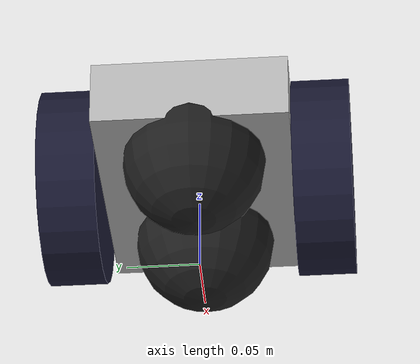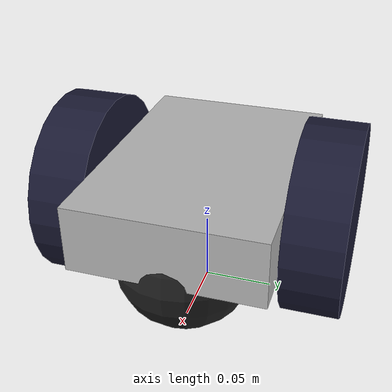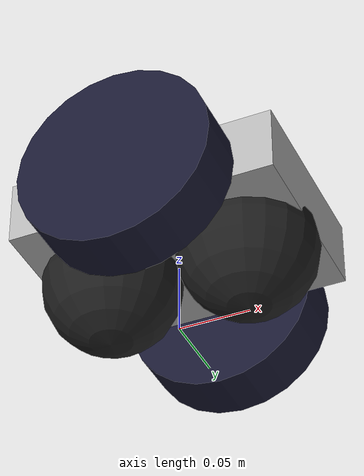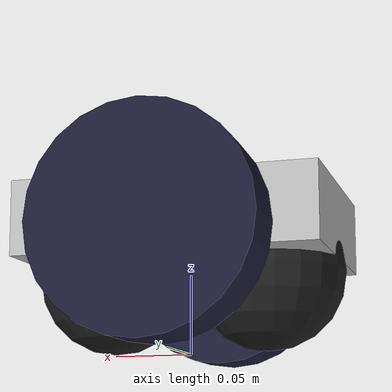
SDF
<?xml version="1.0"?>
<sdf version="1.5">
  <model name = "myrobot_modelled">
    <static>false</static>

    <!-- LINKS -->

    <!--%%%%%%%%%%%%%%%%%%%%%%%%%%%%%%%%%%%%%%%%%BODY%%%%%%%%%%%%%%%%%%%%%%%%%%%%%%%%%%%%%%%%%%%%%%-->
    <link name="cube_base">
      <inertial>
        <mass>15</mass>
        <origin xyz="0.0 0 0" rpy=" 0 0 0"/>
        <inertia>
          <ixx>1</ixx> <ixy>0</ixy> <ixz>0</ixz>
          <iyy>1</iyy> <iyz>0</iyz>
          <izz>1</izz>
        </inertia>
      </inertial>
      <pose>0 0 0.08 0 0 0</pose>
      <collision name="collision">
        <geometry>
          <box>
            <size>0.19 0.134 0.047</size>
          </box>
        </geometry>
        <surface>
          <friction>
            <ode>
              <mu>0</mu>
              <mu2>0</mu2>
            </ode>
          </friction>
        </surface>
      </collision>
      <visual name="visual">
        <pose>0 0 0 0 0 0</pose>
        <geometry>
          <box>
            <size>0.19 0.134 0.047</size>
          </box>
        </geometry>

      </visual>

      <collision name = 'caster_collision'>
        <pose>-0.05 0 -0.03 0 0 0</pose>
        <geometry>
          <sphere>
            <radius>0.049</radius>
          </sphere>
        </geometry>
        <surface>
          <friction>
            <ode>
              <mu>0</mu>
              <mu2>0</mu2>
              <slip1>0.1</slip1>
              <slip2>0.1</slip2>
            </ode>
          </friction>
        </surface>
      </collision>
      <visual name='caster_collision'>
        <pose>-0.05 0 -0.03 0 0 0</pose>
        <geometry>
          <sphere>
            <radius>0.049</radius>
          </sphere>
        </geometry>
        <material>
          <script>
            <uri>file://media/materials/scripts/gazebo.material</uri>
            <name>Gazebo/Black</name>
          </script>
        </material>
      </visual>

      <collision name = 'caster_collision2'>
        <pose>0.05 0 -0.03 0 0 0</pose>
        <geometry>
          <sphere>
            <radius>0.049</radius>
          </sphere>
        </geometry>

        <surface>
          <friction>
            <ode>
              <mu>0</mu>
              <mu2>0</mu2>
              <slip1>0.1</slip1>
              <slip2>0.1</slip2>
            </ode>
          </friction>
        </surface>
      </collision>
      <visual name='caster_collision2'>
        <pose>0.05 0 -0.03 0 0 0</pose>
        <geometry>
          <sphere>
            <radius>0.049</radius>
          </sphere>
        </geometry>
        <material>
          <script>
            <uri>file://media/materials/scripts/gazebo.material</uri>
            <name>Gazebo/Black</name>
          </script>
        </material>
      </visual>
    </link>

    <link name='left_wheel'>
      <pose>0. 0.087 0.06825 0 1.5707 1.5707 </pose>
      <inertial>
        <mass>0.1</mass>
        <inertia>
          <ixx>0.00006771</ixx>
          <ixy>0</ixy>
          <ixz>0</ixz>
          <iyy>0.00006771</iyy>
          <iyz>0</iyz>
          <izz>0.000125</izz>
        </inertia>
      </inertial>
        <collision name='  collision'>
          <geometry>
            <cylinder>
              <radius>.06825</radius>
              <length>0.035</length>
            </cylinder>
          </geometry>
        </collision>

        <visual name='visual'>
          <geometry>
            <cylinder>
              <radius>.06825</radius>
              <length>0.04</length>
            </cylinder>
          </geometry>

          <material>
            <ambient>0.1 0.1 0.1 1</ambient>
            <diffuse>0.1 0.1 0.2 1</diffuse>
            <specular>0 0 0 0</specular>
            <emissive>0 0 0 1</emissive>
          </material>
        </visual>
    </link>

    <link name='right_wheel'>
      <pose>0. -0.087 0.06825 0 1.5707 1.5707 </pose>
      <inertial>
        <mass>0.1</mass>
        <inertia>
          <ixx>0.00006771</ixx>
          <ixy>0</ixy>
          <ixz>0</ixz>
          <iyy>0.00006771</iyy>
          <iyz>0</iyz>
          <izz>0.000125</izz>
        </inertia>
      </inertial>
        <collision name='  collision'>
          <geometry>
            <cylinder>
              <radius>.06825</radius>
              <length>0.04</length>
            </cylinder>
          </geometry>
        </collision>
        <visual name='visual'>
          <geometry>
            <cylinder>
              <radius>.06825</radius>
              <length>0.04</length>
            </cylinder>
          </geometry>
          <material>
            <ambient>0.1 0.1 0.1 1</ambient>
            <diffuse>0.1 0.1 0.2 1</diffuse>
            <specular>0 0 0 0</specular>
            <emissive>0 0 0 1</emissive>
        </material>
        </visual>
    </link>

    <!--%%%%%%%%%%%%%%%%%%%%%%%%%%%%%%%%%%%%%%%%%SUPPORTS%%%%%%%%%%%%%%%%%%%%%%%%%%%%%%%%%%%%%%%%%%%%%%-->
    <link name="BaseBoards">
      <inertial>
        <mass>1</mass>
        <inertia>
          <ixx>.01</ixx> <ixy>0</ixy> <ixz>0</ixz>
          <iyy>.01</iyy> <iyz>0</iyz>
          <izz>.01</izz>
        </inertia>
      </inertial>
      <pose>-0.01 0 0.1435 0 0 0</pose>
      <collision name="collision">
        <geometry>
          <box>
            <size>0.16 0.122315 0.002</size>
          </box>
        </geometry>
        <surface>
          <friction>
            <ode>
              <mu>0</mu>
              <mu2>0</mu2>
            </ode>
          </friction>
        </surface>
      </collision>

      <collision name = 'stick1_collision'>
        <pose>0.075 0.05 -0.02 0 0 0</pose>
        <geometry>
          <cylinder>
            <radius>0.002</radius>
            <length>0.04</length>
          </cylinder>
        </geometry>
        <surface>
          <friction>
            <ode>
              <mu>0</mu>
              <mu2>0</mu2>
              <slip1>0</slip1>
              <slip2>0</slip2>
            </ode>
          </friction>
        </surface>
      </collision>

      <collision name = 'stick2_collision'>
        <pose>0.075 -0.05 -0.02 0 0 0</pose>
        <geometry>
          <cylinder>
            <radius>0.002</radius>
            <length>0.04</length>
          </cylinder>
        </geometry>
        <surface>
          <friction>
            <ode>
              <mu>0</mu>
              <mu2>0</mu2>
              <slip1>0</slip1>
              <slip2>0</slip2>
            </ode>
          </friction>
        </surface>
      </collision>
      <collision name = 'stick3_collision'>
        <pose>-0.075 -0.05 -0.02 0 0 0</pose>
        <geometry>
          <cylinder>
            <radius>0.002</radius>
            <length>0.04</length>
          </cylinder>
        </geometry>
        <surface>
          <friction>
            <ode>
              <mu>0</mu>
              <mu2>0</mu2>
              <slip1>0</slip1>
              <slip2>0</slip2>
            </ode>
          </friction>
        </surface>
      </collision>

      <collision name = 'stick4_collision'>
        <pose>-0.075 0.05 -0.02 0 0 0</pose>
        <geometry>
          <cylinder>
            <radius>0.002</radius>
            <length>0.04</length>
          </cylinder>
        </geometry>
        <surface>
          <friction>
            <ode>
              <mu>0</mu>
              <mu2>0</mu2>
              <slip1>0</slip1>
              <slip2>0</slip2>
            </ode>
          </friction>
        </surface>
      </collision>
    </link>

    <link name="piastra_anteriore">
      <inertial>
        <mass>0.1</mass>
        <inertia>
          <ixx>.0001</ixx> <ixy>0</ixy> <ixz>0</ixz>
          <iyy>.0001</iyy> <iyz>0</iyz>
          <izz>.0001</izz>
        </inertia>
      </inertial>
      <pose>0.074 -0.004 0.1035 0 0 0</pose>
      <collision name="collision">
        <geometry>
          <box>
            <size>0.076851 0.079320 0.003</size>
          </box>
        </geometry>
        <surface>
          <friction>
            <ode>
              <mu>0</mu>
              <mu2>0</mu2>
            </ode>
          </friction>
        </surface>
      </collision>

    </link>

    <link name="supporto_sg90">
      <inertial>

      </inertial>
      <pose>0.094 -0.004 0.0995 0 0 0</pose>
      <collision name="collision">
        <geometry>
          <box>
            <size>0.027 0.049 0.004</size>
          </box>
        </geometry>
        <surface>
          <friction>
            <ode>
              <mu>0</mu>
              <mu2>0</mu2>
            </ode>
          </friction>
        </surface>
      </collision>

    </link>

    <!--%%%%%%%%%%%%%%%%%%%%%%%%%%%%%%%%%%%%%%%%%SENSORS%%%%%%%%%%%%%%%%%%%%%%%%%%%%%%%%%%%%%%%%%%%%%%-->
    <link name='RealSense'>
      <pose>0.035 0.0 0.1535 0 0 0</pose>
      <inertial>
        <mass>0.1</mass>
        <inertia>
          <ixx>0.000166667</ixx>
          <iyy>0.000166667</iyy>
          <izz>0.000166667</izz>
        </inertia>
      </inertial>
        <collision name='collision'>
          <geometry>
            <box>
              <size>0.03 0.05 0.02</size>
            </box>
          </geometry>
        </collision>

        <sensor name="camera" type="depth">
          <update_rate>20</update_rate>
          <camera>
            <horizontal_fov>1.5</horizontal_fov>
            <image>
              <width>640</width>
              <height>480</height>
              <format>R8G8B8</format>
            </image>
            <clip>
              <near>0.05</near>
              <far>100</far>
            </clip>
          </camera>
          <!-- Realsense plugin -->
          <plugin name="camera_plugin" filename="libgazebo_ros_openni_kinect.so">
            <baseline>0.2</baseline>
            <alwaysOn>true</alwaysOn>
            <updateRate>0.0</updateRate>
            <cameraName>camera_ir</cameraName>
            <imageTopicName>/camera/color/image_raw</imageTopicName>
            <cameraInfoTopicName>/camera/color/camera_info</cameraInfoTopicName>
            <depthImageTopicName>/camera/depth/image_raw</depthImageTopicName>
            <depthImageCameraInfoTopicName>/camera/depth/camera_info</depthImageCameraInfoTopicName>
            <pointCloudTopicName>/camera/depth/points</pointCloudTopicName>
            <frameName>RealSense</frameName>
            <pointCloudCutoff>0.3</pointCloudCutoff>
            <pointCloudCutoffMax>4.5</pointCloudCutoffMax>
            <distortionK1>0</distortionK1>
            <distortionK2>0</distortionK2>
            <distortionK3>0</distortionK3>
            <distortionT1>0</distortionT1>
            <distortionT2>0</distortionT2>
            <CxPrime>0</CxPrime>
            <Cx>0</Cx>
            <Cy>0</Cy>
            <focalLength>0</focalLength>
            <hackBaseline>0</hackBaseline>
          </plugin>
        </sensor>
    </link>

    <link name='rightfront_force_sensor'>
      <pose>0.11 0.05 0.07 0 0 0</pose>
        <collision name='collision_rightfront_collision'>
          <geometry>
            <box>
              <size>0.05 0.01 0.01</size>
            </box>
          </geometry>
        </collision>
        <sensor name="rf_force_sensor" type="contact">
          <update_rate>30.0</update_rate>
          <always_on>true</always_on>
          <contact>
            <collision>collision_rightfront_collision</collision>
          </contact>
          <!-- Contact sensor plugin -->
          <plugin name="gazebo_ros_bumper_controller" filename="libgazebo_ros_bumper.so">
            <alwaysOn>true</alwaysOn>
            <updateRate>30.0</updateRate>
            <bumperTopicName>/force/rightfront_sensor</bumperTopicName>
            <frameName>rightfront_force_sensor</frameName>
          </plugin>
        </sensor>
    </link>

    <link name='leftfront_force_sensor'>
      <pose>0.11 -0.05 0.07 0 0 0</pose>
        <collision name='collision_leftfront_collision'>
          <geometry>
            <box>
              <size>0.05 0.01 0.01</size>
            </box>
          </geometry>
        </collision>
        <sensor name="lf_force_sensor" type="contact">
          <update_rate>30.0</update_rate>
          <always_on>true</always_on>
          <contact>
            <collision>collision_leftfront_collision</collision>
          </contact>
          <!-- Contact sensor plugin -->
          <plugin name="gazebo_ros_bumper_controller" filename="libgazebo_ros_bumper.so">
            <alwaysOn>true</alwaysOn>
            <updateRate>30.0</updateRate>
            <bumperTopicName>/force/leftfront_sensor</bumperTopicName>
            <frameName>leftfront_force_sensor</frameName>
          </plugin>
        </sensor>
    </link>

    <link name='LightSensor'>
      <pose>0.05 0.05 0.105 0 0 0</pose>
      <inertial>
        <mass>0.01</mass>
        <inertia>
          <ixx>1</ixx>
          <ixy>0</ixy>
          <ixz>0</ixz>
          <iyy>1</iyy>
          <iyz>0</iyz>
          <izz>1</izz>
        </inertia>
      </inertial>
      <collision name='collision'>
        <geometry>
          <box>
            <size>0.01 0.01 0.01</size>
          </box>
        </geometry>
        <max_contacts>10</max_contacts>
        <surface>
          <contact>
            <ode/>
          </contact>
          <bounce/>
          <friction>
            <ode/>
          </friction>
        </surface>
      </collision>
      <sensor name='camera' type='camera'>
        <camera name='camera'>
          <horizontal_fov>1.047</horizontal_fov>
          <image>
            <width>320</width>
            <height>240</height>
          </image>
          <clip>
            <near>0.1</near>
            <far>100</far>
          </clip>
        </camera>
        <!-- Light sensor plugin -->
        <plugin name="myrobot" filename="libgazebo_light_sensor_plugin.so">
          <cameraName>camera2</cameraName>
          <alwaysOn>true</alwaysOn>
          <updateRate>10</updateRate>
          <imageTopicName>rgb/image_raw</imageTopicName>
          <depthImageTopicName>depth/image_raw</depthImageTopicName>
          <pointCloudTopicName>depth/points</pointCloudTopicName>
          <cameraInfoTopicName>rgb/camera_info</cameraInfoTopicName>
          <depthImageCameraInfoTopicName>depth/camera_info</depthImageCameraInfoTopicName>
          <frameName>camera_depth_optical_frame</frameName>
          <baseline>0.1</baseline>
          <distortion_k1>0.0</distortion_k1>
          <distortion_k2>0.0</distortion_k2>
          <distortion_k3>0.0</distortion_k3>
          <distortion_t1>0.0</distortion_t1>
          <distortion_t2>0.0</distortion_t2>
          <pointCloudCutoff>0.4</pointCloudCutoff>
          <robotNamespace>/</robotNamespace>
        </plugin>
      </sensor>
      <self_collide>0</self_collide>
      <kinematic>0</kinematic>
      <gravity>1</gravity>
    </link>
    <!--%%%%%%%%%%%%%%%%%%%%%%%%%%%%%%%%%%%%%%%%%BOARDS%%%%%%%%%%%%%%%%%%%%%%%%%%%%%%%%%%%%%%%%%%%%%%-->
    <!--%%%%%%%%%%%%%%%%%%%%%%%%%%%%%%%%%%%%%%%%%MISCELLANEOUS%%%%%%%%%%%%%%%%%%%%%%%%%%%%%%%%%%%%%%%%%%%%%%-->
    <link name='sg90'>
      <pose>0.096 -0.005 0.092 1.5707 0 0 </pose>
        <collision name='  collision'>
          <geometry>
            <box>
              <size>0.012 0.022 0.022</size>
            </box>
          </geometry>
        </collision>

      </link>

      <link name='sg90_axis'>
        <pose>0.096 0.0005 0.106 0 0 0</pose>
        <collision name='collision'>
          <geometry>
            <cylinder>
              <radius>0.002</radius>
              <length>0.01</length>
            </cylinder>
          </geometry>
        </collision>

    </link>

    <!--PlUGINS-->
    <!--                SG90 axis                             -->

  <!-- ROS Control plugin for Gazebo -->

    <!-- JOINTS -->
    <joint type='revolute' name='left_wheel_hinge'>
      <pose>0 0 -0.03 0 0 0</pose>
      <child>left_wheel</child>
      <parent>cube_base</parent>
      <axis>
        <xyz>0 0 1</xyz>
      </axis>
    </joint>

    <joint type='revolute' name='right_wheel_hinge'>
      <pose>0 0 0.03 0 0 0</pose>
      <child>right_wheel</child>
      <parent>cube_base</parent>
      <axis>
        <xyz>0 0 1</xyz>
      </axis>
    </joint>

    <joint type='fixed' name='BaseBoards_joint'>
      <pose>0 0 0 0 0 0</pose>
      <child>BaseBoards</child>
      <parent>cube_base</parent>
    </joint>

    <joint type='fixed' name='piastra_anteriore_joint'>
      <pose>0 0 0 0 0 0</pose>
      <child>piastra_anteriore</child>
      <parent>cube_base</parent>
    </joint>

    <joint type='fixed' name='supporto_sg90_joint'>
      <pose>0 0 0 0 0 0</pose>
      <child>supporto_sg90</child>
      <parent>piastra_anteriore</parent>
    </joint>

    <joint type='fixed' name='RealSenseJoint'>
      <pose>0 0 0 0 0 0</pose>
      <child>RealSense</child>
      <parent>BaseBoards</parent>
    </joint>

    <joint type='fixed' name='RigthFrontForceJoint'>
      <pose>0 0 0 0 0 0</pose>
      <child>rightfront_force_sensor</child>
      <parent>cube_base</parent>
    </joint>

    <joint type='fixed' name='LeftFrontForceJoint'>
      <pose>0 0 0 0 0 0</pose>
      <child>leftfront_force_sensor</child>
      <parent>cube_base</parent>
    </joint>

    <joint type='fixed' name='LightSensorJoint'>
      <pose>0 0 0 0 0 0</pose>
      <child>LightSensor</child>
      <parent>cube_base</parent>
    </joint>

    <joint type='fixed' name='sg90_joint'>
      <pose>0 0 0 0 0 0</pose>
      <child>sg90</child>
      <parent>supporto_sg90</parent>
    </joint>

    <joint name="sg90_to_axis" type="continuous">
      <pose>0 0 0 0 0 0</pose>
      <child>sg90_axis</child>
      <parent>sg90</parent>
      <axis xyz="0 0 1"/>
  </joint>

    <!-- PLUGINS -->
    <plugin name="cube_moving_code" filename="libgazebo_ros_diff_drive.so">
        <commandTopic>cmd_vel</commandTopic>
        <odometryTopic>odom</odometryTopic>
        <odometryFrame>odom</odometryFrame>
        <odometrySource>world</odometrySource>
        <publishOdomTF>true</publishOdomTF>
        <robotBaseFrame>cube_base</robotBaseFrame>
        <publishWheelTF>false</publishWheelTF>
        <publishTf>true</publishTf>
        <publishWheelJointState>true</publishWheelJointState>
        <legacyMode>false</legacyMode>
        <updateRate>30</updateRate>
        <leftJoint>left_wheel_hinge</leftJoint>
        <rightJoint>right_wheel_hinge</rightJoint>
        <wheelSeparation>0.4</wheelSeparation>
        <wheelDiameter>0.2</wheelDiameter>
        <rosDebugLevel>na</rosDebugLevel>
      </plugin>
  </model>
</sdf>
